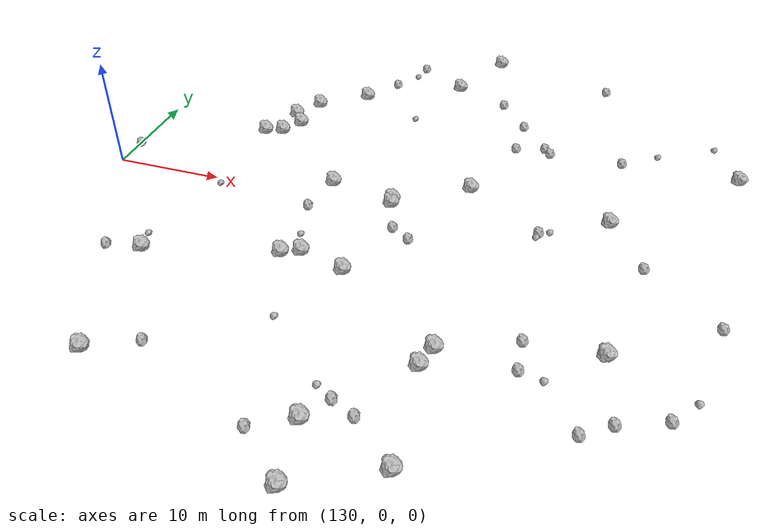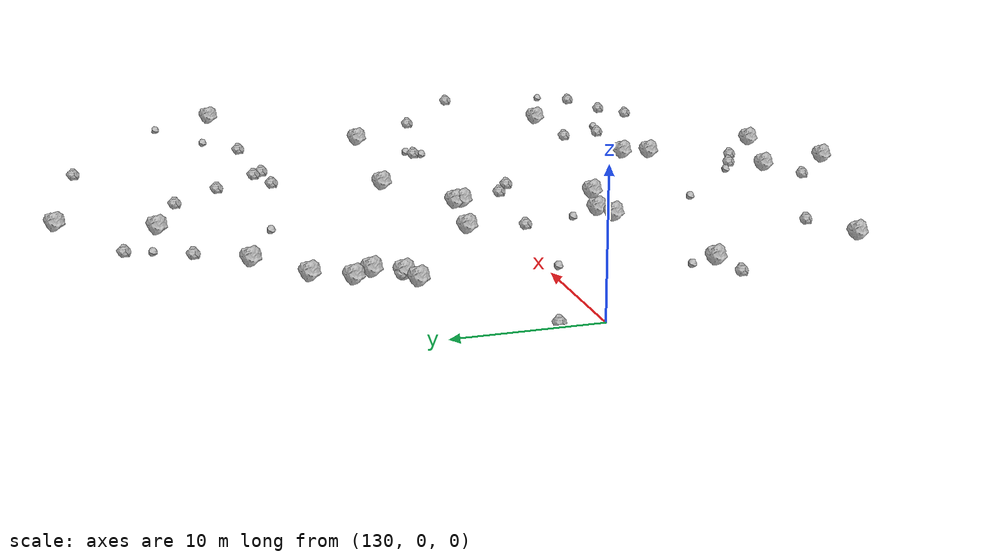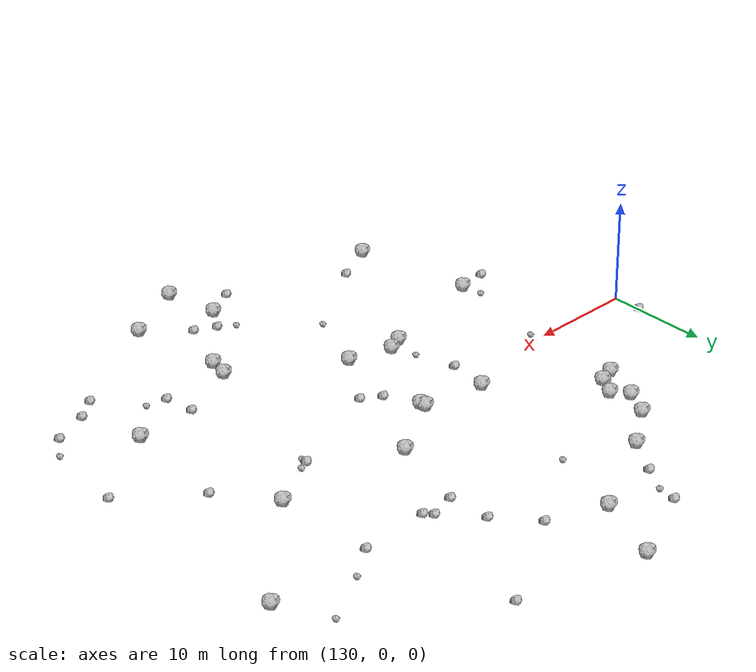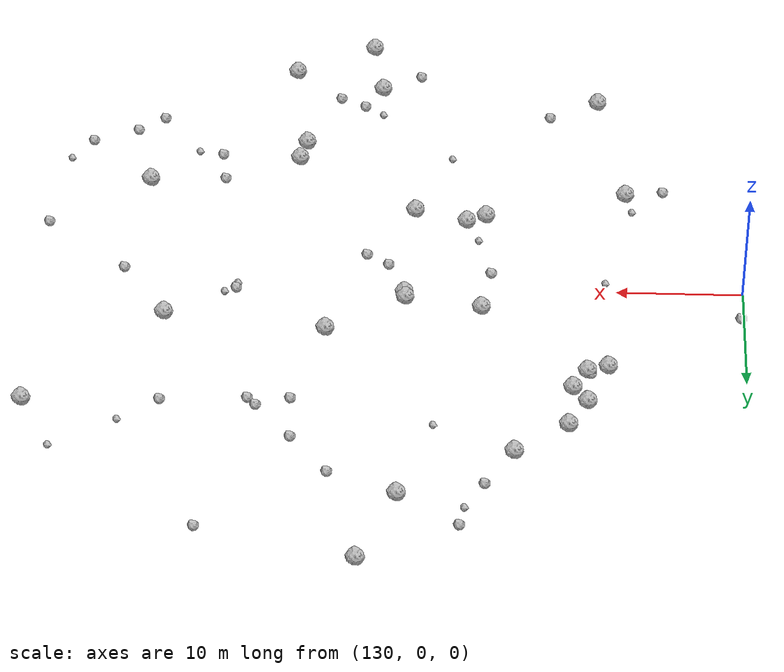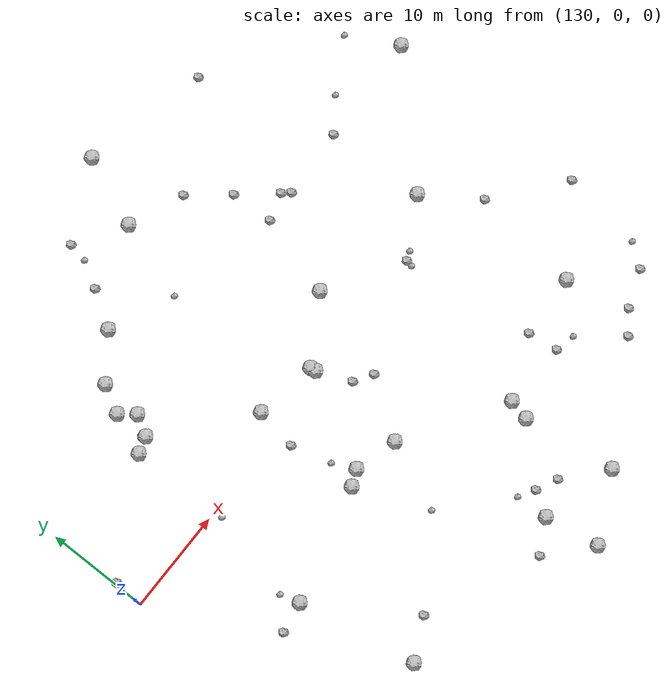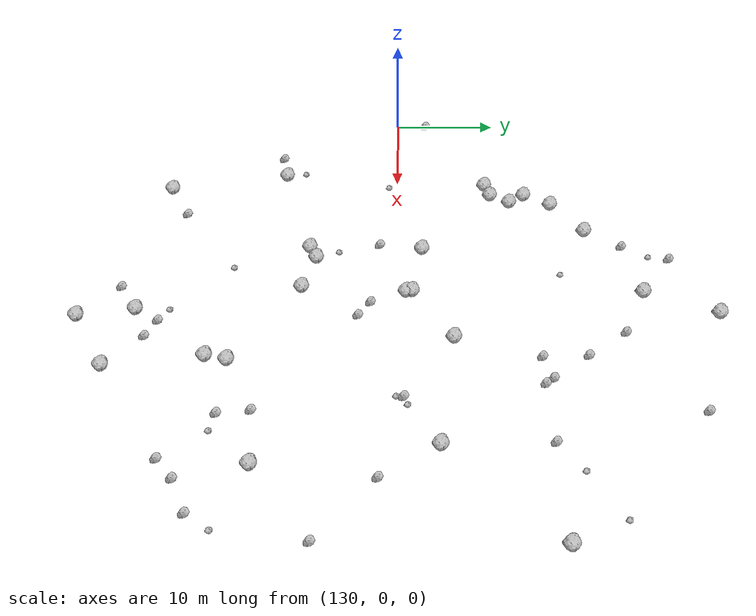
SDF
<sdf version="1.6">
 <world name="default">
  <include><uri>model://sun</uri></include>
  <model name="rock1_4_2">
   <include><uri>model://rock1</uri><pose>160.14047255125524 -29.344415213664444 0.5 0 0 0</pose></include>
  </model>
  <model name="rock1_4_3">
   <include><uri>model://rock1</uri><pose>142.32695717892494 12.652828681622715 0.5 0 0 0</pose></include>
  </model>
  <model name="rock1_4_4">
   <include><uri>model://rock1</uri><pose>140.72185367964903 8.780482724743273 0.5 0 0 0</pose></include>
  </model>
  <model name="rock1_4_5">
   <include><uri>model://rock1</uri><pose>151.98188957671312 -7.732377694522452 0.5 0 0 0</pose></include>
  </model>
  <model name="rock1_4_6">
   <include><uri>model://rock1</uri><pose>150.44208052191672 -8.406694030414979 0.5 0 0 0</pose></include>
  </model>
  <model name="rock1_4_7">
   <include><uri>model://rock1</uri><pose>177.83574546836536 -12.06201003030823 0.5 0 0 0</pose></include>
  </model>
  <model name="rock1_4_8">
   <include><uri>model://rock1</uri><pose>156.69089623693205 1.3994452599404035 0.5 0 0 0</pose></include>
  </model>
  <model name="rock1_4_9">
   <include><uri>model://rock1</uri><pose>139.18374728435313 -11.27724202094269 0.5 0 0 0</pose></include>
  </model>
  <model name="rock1_4_10">
   <include><uri>model://rock1</uri><pose>159.25036691526182 -24.04131235840616 0.5 0 0 0</pose></include>
  </model>
  <model name="rock1_4_11">
   <include><uri>model://rock1</uri><pose>166.50926218828377 -26.072947582927092 0.5 0 0 0</pose></include>
  </model>
  <model name="rock1_4_12">
   <include><uri>model://rock1</uri><pose>143.7986654718285 15.230105362916042 0.5 0 0 0</pose></include>
  </model>
  <model name="rock1_4_13">
   <include><uri>model://rock1</uri><pose>156.15178052423545 -8.930827270914236 0.5 0 0 0</pose></include>
  </model>
  <model name="rock1_4_14">
   <include><uri>model://rock1</uri><pose>150.65509348607904 2.379555280685402 0.5 0 0 0</pose></include>
  </model>
  <model name="rock1_4_15">
   <include><uri>model://rock1</uri><pose>156.7357296313151 22.95856487408504 0.5 0 0 0</pose></include>
  </model>
  <model name="rock1_4_16">
   <include><uri>model://rock1</uri><pose>142.3345501602952 9.292621723585675 0.5 0 0 0</pose></include>
  </model>
  <model name="rock1_4_17">
   <include><uri>model://rock1</uri><pose>175.61929340486964 3.7377784837569052 0.5 0 0 0</pose></include>
  </model>
  <model name="rock1_4_18">
   <include><uri>model://rock1</uri><pose>156.77396120275452 0.8508260967298824 0.5 0 0 0</pose></include>
  </model>
  <model name="rock1_4_19">
   <include><uri>model://rock1</uri><pose>165.7842768870217 -15.049334960132013 0.5 0 0 0</pose></include>
  </model>
  <model name="rock1_4_20">
   <include><uri>model://rock1</uri><pose>143.46100285755043 11.160514933020565 0.5 0 0 0</pose></include>
  </model>
  <model name="rock1_4_21">
   <include><uri>model://rock1</uri><pose>165.29091777468764 -17.055987816287534 0.5 0 0 0</pose></include>
  </model>
  <model name="rock1_4_22">
   <include><uri>model://rock1</uri><pose>162.8581701947462 5.1707250307766515 0.5 0 0 0</pose></include>
  </model>
  <model name="rock1_4_23">
   <include><uri>model://rock1</uri><pose>141.3462398697548 -22.778965302901163 0.5 0 0 0</pose></include>
  </model>
  <model name="rock1_4_24">
   <include><uri>model://rock1</uri><pose>185.88256700007076 13.721197278120364 0.5 0 0 0</pose></include>
  </model>
  <model name="rock1_4_25">
   <include><uri>model://rock1</uri><pose>147.92101127930536 18.233954363450543 0.5 0 0 0</pose></include>
  </model>
  <model name="rock1_4_26">
   <include><uri>model://rock1</uri><pose>159.56034890991856 29.64292634783731 0.5 0 0 0</pose></include>
  </model>
  <model name="rock2_4_0">
   <include><uri>model://rock2</uri><pose>145.26752179260905 -20.815888303630246 0.3 0 0 0</pose></include>
  </model>
  <model name="rock2_4_1">
   <include><uri>model://rock2</uri><pose>165.18963044527067 12.986111855286424 0.3 0 0 0</pose></include>
  </model>
  <model name="rock2_4_2">
   <include><uri>model://rock2</uri><pose>158.09765808513237 -2.424843013438256 0.3 0 0 0</pose></include>
  </model>
  <model name="rock2_4_3">
   <include><uri>model://rock2</uri><pose>179.29744734917887 -18.197977114969618 0.3 0 0 0</pose></include>
  </model>
  <model name="rock2_4_4">
   <include><uri>model://rock2</uri><pose>136.13910772813068 -11.77378327625178 0.3 0 0 0</pose></include>
  </model>
  <model name="rock2_4_5">
   <include><uri>model://rock2</uri><pose>175.24967957233292 13.414014072015739 0.3 0 0 0</pose></include>
  </model>
  <model name="rock2_4_6">
   <include><uri>model://rock2</uri><pose>177.18892224378214 -19.752464603181878 0.3 0 0 0</pose></include>
  </model>
  <model name="rock2_4_7">
   <include><uri>model://rock2</uri><pose>165.01626715398564 17.13477394861374 0.3 0 0 0</pose></include>
  </model>
  <model name="rock2_4_8">
   <include><uri>model://rock2</uri><pose>171.7024546887214 26.731433386534746 0.3 0 0 0</pose></include>
  </model>
  <model name="rock2_4_9">
   <include><uri>model://rock2</uri><pose>171.7254264446197 -12.396015152551488 0.3 0 0 0</pose></include>
  </model>
  <model name="rock2_4_10">
   <include><uri>model://rock2</uri><pose>182.87558519494362 -16.77247222556078 0.3 0 0 0</pose></include>
  </model>
  <model name="rock2_4_11">
   <include><uri>model://rock2</uri><pose>151.94928217022337 25.9977570243124 0.3 0 0 0</pose></include>
  </model>
  <model name="rock2_4_12">
   <include><uri>model://rock2</uri><pose>162.67461793487988 -22.76568367132994 0.3 0 0 0</pose></include>
  </model>
  <model name="rock2_4_13">
   <include><uri>model://rock2</uri><pose>170.08054236489008 0.6570660283635377 0.3 0 0 0</pose></include>
  </model>
  <model name="rock2_4_14">
   <include><uri>model://rock2</uri><pose>150.11366346457578 21.652816251895075 0.3 0 0 0</pose></include>
  </model>
  <model name="rock2_4_15">
   <include><uri>model://rock2</uri><pose>167.84281447235793 13.786001123177805 0.3 0 0 0</pose></include>
  </model>
  <model name="rock2_4_16">
   <include><uri>model://rock2</uri><pose>168.49477654671202 13.0465849746071 0.3 0 0 0</pose></include>
  </model>
  <model name="rock2_4_17">
   <include><uri>model://rock2</uri><pose>162.05873422966232 20.773518587274623 0.3 0 0 0</pose></include>
  </model>
  <model name="rock2_4_18">
   <include><uri>model://rock2</uri><pose>179.1282110267705 -1.4507336774127424 0.3 0 0 0</pose></include>
  </model>
  <model name="rock2_4_19">
   <include><uri>model://rock2</uri><pose>142.0681869896651 9.527587278091964 0.3 0 0 0</pose></include>
  </model>
  <model name="rock2_4_20">
   <include><uri>model://rock2</uri><pose>160.64267255052002 -21.795923206283465 0.3 0 0 0</pose></include>
  </model>
  <model name="rock2_4_21">
   <include><uri>model://rock2</uri><pose>159.86447592987685 -3.5445310164282198 0.3 0 0 0</pose></include>
  </model>
  <model name="rock2_4_22">
   <include><uri>model://rock2</uri><pose>130.22943484071033 2.9538408763843975 0.3 0 0 0</pose></include>
  </model>
  <model name="rock2_4_23">
   <include><uri>model://rock2</uri><pose>156.083056842797 -25.76558692137484 0.3 0 0 0</pose></include>
  </model>
  <model name="rock2_4_24">
   <include><uri>model://rock2</uri><pose>172.09328020511 -15.342076212092373 0.3 0 0 0</pose></include>
  </model>
  <model name="rock2_4_25">
   <include><uri>model://rock2</uri><pose>185.60708713652767 -6.685501087564539 0.3 0 0 0</pose></include>
  </model>
  <model name="rock2_4_26">
   <include><uri>model://rock2</uri><pose>149.93019899936587 -1.6541734255017246 0.3 0 0 0</pose></include>
  </model>
  <model name="rock3_4_0">
   <include><uri>model://rock3</uri><pose>138.62355185812234 -9.404357531812352 0.2 0 0 0</pose></include>
  </model>
  <model name="rock3_4_1">
   <include><uri>model://rock3</uri><pose>150.9375079604573 -5.582433800705221 0.2 0 0 0</pose></include>
  </model>
  <model name="rock3_4_2">
   <include><uri>model://rock3</uri><pose>169.96344761106172 -0.021930078654310847 0.2 0 0 0</pose></include>
  </model>
  <model name="rock3_4_3">
   <include><uri>model://rock3</uri><pose>154.11777695434847 15.443914680181393 0.2 0 0 0</pose></include>
  </model>
  <model name="rock3_4_4">
   <include><uri>model://rock3</uri><pose>153.23585207417062 -15.490260091322625 0.2 0 0 0</pose></include>
  </model>
  <model name="rock3_4_5">
   <include><uri>model://rock3</uri><pose>170.95181610620241 0.9830084198456781 0.2 0 0 0</pose></include>
  </model>
  <model name="rock3_4_6">
   <include><uri>model://rock3</uri><pose>184.48477444554993 -14.647696223882145 0.2 0 0 0</pose></include>
  </model>
  <model name="rock3_4_7">
   <include><uri>model://rock3</uri><pose>151.5647345300167 24.081183917629517 0.2 0 0 0</pose></include>
  </model>
  <model name="rock3_4_8">
   <include><uri>model://rock3</uri><pose>178.31647933935764 15.599381196696427 0.2 0 0 0</pose></include>
  </model>
  <model name="rock3_4_9">
   <include><uri>model://rock3</uri><pose>159.0945726895353 -20.898388213094883 0.2 0 0 0</pose></include>
  </model>
  <model name="rock3_4_10">
   <include><uri>model://rock3</uri><pose>174.02393802927173 -15.80363535944129 0.2 0 0 0</pose></include>
  </model>
  <model name="rock3_4_11">
   <include><uri>model://rock3</uri><pose>183.34692857341747 18.52473891603136 0.2 0 0 0</pose></include>
  </model>
  <model name="rock3_4_12">
   <include><uri>model://rock3</uri><pose>140.829586788592 -0.8471625921558932 0.2 0 0 0</pose></include>
  </model>
 </world>
</sdf>
